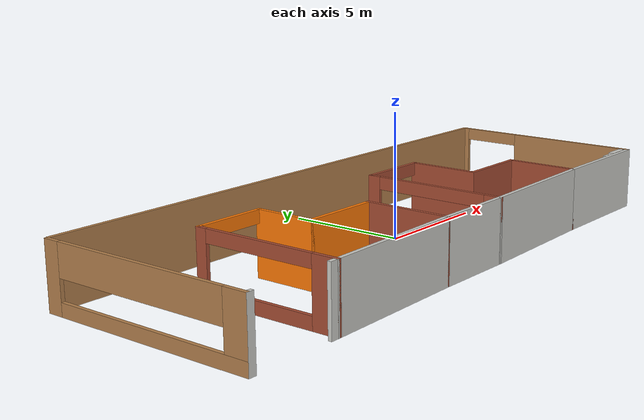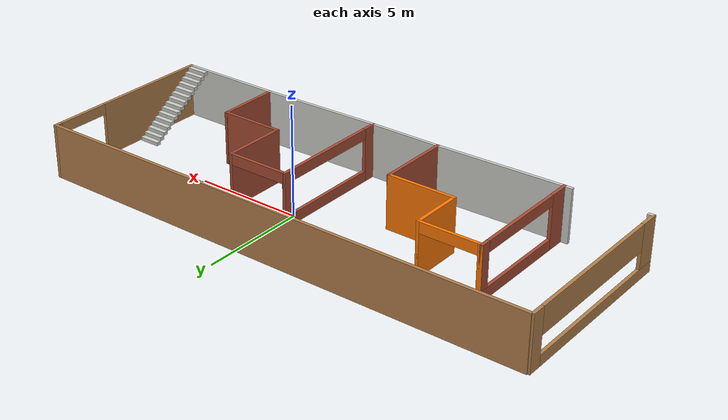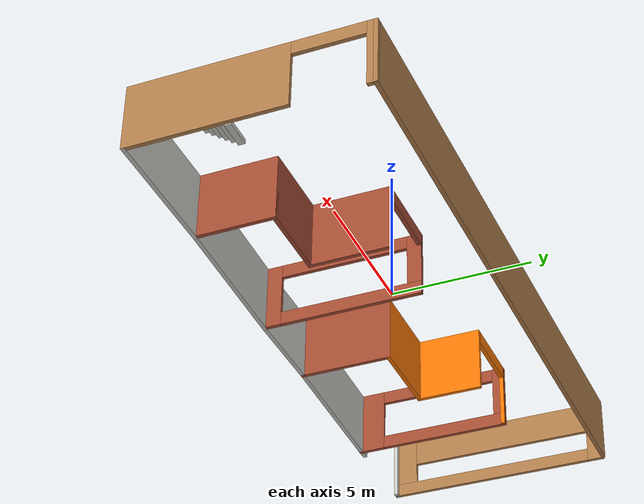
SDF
<?xml version='1.0'?>
<sdf version='1.6'>
  <model name='classroom'>
    <pose frame=''>-1.63813 -0.758557 0 0 -0 0</pose>
    <link name='Stairs_0'>
      <visual name='Stairs_0_Visual_0'>
        <pose frame=''>11.23 -0.540733 0.083333 0 -0 0</pose>
        <geometry>
          <box>
            <size>1 0.233333 0.166667</size>
          </box>
        </geometry>
        <material>
          <script>
            <uri>file://media/materials/scripts/gazebo.material</uri>
            <name>Gazebo/CeilingTiled</name>
          </script>
          <ambient>1 0.0941176 0.364706 1</ambient>
        </material>
        <meta>
          <layer>0</layer>
        </meta>
      </visual>
      <collision name='Stairs_0_Collision_0'>
        <geometry>
          <box>
            <size>1 0.233333 0.166667</size>
          </box>
        </geometry>
        <pose frame=''>11.23 -0.540733 0.083333 0 -0 0</pose>
      </collision>
      <visual name='Stairs_0_Visual_1'>
        <pose frame=''>11.23 -0.774067 0.25 0 -0 0</pose>
        <geometry>
          <box>
            <size>1 0.233333 0.166667</size>
          </box>
        </geometry>
        <material>
          <script>
            <uri>file://media/materials/scripts/gazebo.material</uri>
            <name>Gazebo/CeilingTiled</name>
          </script>
          <ambient>1 0.0941176 0.364706 1</ambient>
        </material>
        <meta>
          <layer>0</layer>
        </meta>
      </visual>
      <collision name='Stairs_0_Collision_1'>
        <geometry>
          <box>
            <size>1 0.233333 0.166667</size>
          </box>
        </geometry>
        <pose frame=''>11.23 -0.774067 0.25 0 -0 0</pose>
      </collision>
      <visual name='Stairs_0_Visual_2'>
        <pose frame=''>11.23 -1.0074 0.416667 0 -0 0</pose>
        <geometry>
          <box>
            <size>1 0.233333 0.166667</size>
          </box>
        </geometry>
        <material>
          <script>
            <uri>file://media/materials/scripts/gazebo.material</uri>
            <name>Gazebo/CeilingTiled</name>
          </script>
          <ambient>1 0.0941176 0.364706 1</ambient>
        </material>
        <meta>
          <layer>0</layer>
        </meta>
      </visual>
      <collision name='Stairs_0_Collision_2'>
        <geometry>
          <box>
            <size>1 0.233333 0.166667</size>
          </box>
        </geometry>
        <pose frame=''>11.23 -1.0074 0.416667 0 -0 0</pose>
      </collision>
      <visual name='Stairs_0_Visual_3'>
        <pose frame=''>11.23 -1.24073 0.583333 0 -0 0</pose>
        <geometry>
          <box>
            <size>1 0.233333 0.166667</size>
          </box>
        </geometry>
        <material>
          <script>
            <uri>file://media/materials/scripts/gazebo.material</uri>
            <name>Gazebo/CeilingTiled</name>
          </script>
          <ambient>1 0.0941176 0.364706 1</ambient>
        </material>
        <meta>
          <layer>0</layer>
        </meta>
      </visual>
      <collision name='Stairs_0_Collision_3'>
        <geometry>
          <box>
            <size>1 0.233333 0.166667</size>
          </box>
        </geometry>
        <pose frame=''>11.23 -1.24073 0.583333 0 -0 0</pose>
      </collision>
      <visual name='Stairs_0_Visual_4'>
        <pose frame=''>11.23 -1.47407 0.75 0 -0 0</pose>
        <geometry>
          <box>
            <size>1 0.233333 0.166667</size>
          </box>
        </geometry>
        <material>
          <script>
            <uri>file://media/materials/scripts/gazebo.material</uri>
            <name>Gazebo/CeilingTiled</name>
          </script>
          <ambient>1 0.0941176 0.364706 1</ambient>
        </material>
        <meta>
          <layer>0</layer>
        </meta>
      </visual>
      <collision name='Stairs_0_Collision_4'>
        <geometry>
          <box>
            <size>1 0.233333 0.166667</size>
          </box>
        </geometry>
        <pose frame=''>11.23 -1.47407 0.75 0 -0 0</pose>
      </collision>
      <visual name='Stairs_0_Visual_5'>
        <pose frame=''>11.23 -1.7074 0.916667 0 -0 0</pose>
        <geometry>
          <box>
            <size>1 0.233333 0.166667</size>
          </box>
        </geometry>
        <material>
          <script>
            <uri>file://media/materials/scripts/gazebo.material</uri>
            <name>Gazebo/CeilingTiled</name>
          </script>
          <ambient>1 0.0941176 0.364706 1</ambient>
        </material>
        <meta>
          <layer>0</layer>
        </meta>
      </visual>
      <collision name='Stairs_0_Collision_5'>
        <geometry>
          <box>
            <size>1 0.233333 0.166667</size>
          </box>
        </geometry>
        <pose frame=''>11.23 -1.7074 0.916667 0 -0 0</pose>
      </collision>
      <visual name='Stairs_0_Visual_6'>
        <pose frame=''>11.23 -1.94073 1.08333 0 -0 0</pose>
        <geometry>
          <box>
            <size>1 0.233333 0.166667</size>
          </box>
        </geometry>
        <material>
          <script>
            <uri>file://media/materials/scripts/gazebo.material</uri>
            <name>Gazebo/CeilingTiled</name>
          </script>
          <ambient>1 0.0941176 0.364706 1</ambient>
        </material>
        <meta>
          <layer>0</layer>
        </meta>
      </visual>
      <collision name='Stairs_0_Collision_6'>
        <geometry>
          <box>
            <size>1 0.233333 0.166667</size>
          </box>
        </geometry>
        <pose frame=''>11.23 -1.94073 1.08333 0 -0 0</pose>
      </collision>
      <visual name='Stairs_0_Visual_7'>
        <pose frame=''>11.23 -2.17407 1.25 0 -0 0</pose>
        <geometry>
          <box>
            <size>1 0.233333 0.166667</size>
          </box>
        </geometry>
        <material>
          <script>
            <uri>file://media/materials/scripts/gazebo.material</uri>
            <name>Gazebo/CeilingTiled</name>
          </script>
          <ambient>1 0.0941176 0.364706 1</ambient>
        </material>
        <meta>
          <layer>0</layer>
        </meta>
      </visual>
      <collision name='Stairs_0_Collision_7'>
        <geometry>
          <box>
            <size>1 0.233333 0.166667</size>
          </box>
        </geometry>
        <pose frame=''>11.23 -2.17407 1.25 0 -0 0</pose>
      </collision>
      <visual name='Stairs_0_Visual_8'>
        <pose frame=''>11.23 -2.4074 1.41667 0 -0 0</pose>
        <geometry>
          <box>
            <size>1 0.233333 0.166667</size>
          </box>
        </geometry>
        <material>
          <script>
            <uri>file://media/materials/scripts/gazebo.material</uri>
            <name>Gazebo/CeilingTiled</name>
          </script>
          <ambient>1 0.0941176 0.364706 1</ambient>
        </material>
        <meta>
          <layer>0</layer>
        </meta>
      </visual>
      <collision name='Stairs_0_Collision_8'>
        <geometry>
          <box>
            <size>1 0.233333 0.166667</size>
          </box>
        </geometry>
        <pose frame=''>11.23 -2.4074 1.41667 0 -0 0</pose>
      </collision>
      <visual name='Stairs_0_Visual_9'>
        <pose frame=''>11.23 -2.64073 1.58333 0 -0 0</pose>
        <geometry>
          <box>
            <size>1 0.233333 0.166667</size>
          </box>
        </geometry>
        <material>
          <script>
            <uri>file://media/materials/scripts/gazebo.material</uri>
            <name>Gazebo/CeilingTiled</name>
          </script>
          <ambient>1 0.0941176 0.364706 1</ambient>
        </material>
        <meta>
          <layer>0</layer>
        </meta>
      </visual>
      <collision name='Stairs_0_Collision_9'>
        <geometry>
          <box>
            <size>1 0.233333 0.166667</size>
          </box>
        </geometry>
        <pose frame=''>11.23 -2.64073 1.58333 0 -0 0</pose>
      </collision>
      <visual name='Stairs_0_Visual_10'>
        <pose frame=''>11.23 -2.87407 1.75 0 -0 0</pose>
        <geometry>
          <box>
            <size>1 0.233333 0.166667</size>
          </box>
        </geometry>
        <material>
          <script>
            <uri>file://media/materials/scripts/gazebo.material</uri>
            <name>Gazebo/CeilingTiled</name>
          </script>
          <ambient>1 0.0941176 0.364706 1</ambient>
        </material>
        <meta>
          <layer>0</layer>
        </meta>
      </visual>
      <collision name='Stairs_0_Collision_10'>
        <geometry>
          <box>
            <size>1 0.233333 0.166667</size>
          </box>
        </geometry>
        <pose frame=''>11.23 -2.87407 1.75 0 -0 0</pose>
      </collision>
      <visual name='Stairs_0_Visual_11'>
        <pose frame=''>11.23 -3.1074 1.91667 0 -0 0</pose>
        <geometry>
          <box>
            <size>1 0.233333 0.166667</size>
          </box>
        </geometry>
        <material>
          <script>
            <uri>file://media/materials/scripts/gazebo.material</uri>
            <name>Gazebo/CeilingTiled</name>
          </script>
          <ambient>1 0.0941176 0.364706 1</ambient>
        </material>
        <meta>
          <layer>0</layer>
        </meta>
      </visual>
      <collision name='Stairs_0_Collision_11'>
        <geometry>
          <box>
            <size>1 0.233333 0.166667</size>
          </box>
        </geometry>
        <pose frame=''>11.23 -3.1074 1.91667 0 -0 0</pose>
      </collision>
      <visual name='Stairs_0_Visual_12'>
        <pose frame=''>11.23 -3.34073 2.08333 0 -0 0</pose>
        <geometry>
          <box>
            <size>1 0.233333 0.166667</size>
          </box>
        </geometry>
        <material>
          <script>
            <uri>file://media/materials/scripts/gazebo.material</uri>
            <name>Gazebo/CeilingTiled</name>
          </script>
          <ambient>1 0.0941176 0.364706 1</ambient>
        </material>
        <meta>
          <layer>0</layer>
        </meta>
      </visual>
      <collision name='Stairs_0_Collision_12'>
        <geometry>
          <box>
            <size>1 0.233333 0.166667</size>
          </box>
        </geometry>
        <pose frame=''>11.23 -3.34073 2.08333 0 -0 0</pose>
      </collision>
      <visual name='Stairs_0_Visual_13'>
        <pose frame=''>11.23 -3.57407 2.25 0 -0 0</pose>
        <geometry>
          <box>
            <size>1 0.233333 0.166667</size>
          </box>
        </geometry>
        <material>
          <script>
            <uri>file://media/materials/scripts/gazebo.material</uri>
            <name>Gazebo/CeilingTiled</name>
          </script>
          <ambient>1 0.0941176 0.364706 1</ambient>
        </material>
        <meta>
          <layer>0</layer>
        </meta>
      </visual>
      <collision name='Stairs_0_Collision_13'>
        <geometry>
          <box>
            <size>1 0.233333 0.166667</size>
          </box>
        </geometry>
        <pose frame=''>11.23 -3.57407 2.25 0 -0 0</pose>
      </collision>
      <visual name='Stairs_0_Visual_14'>
        <pose frame=''>11.23 -3.8074 2.41667 0 -0 0</pose>
        <geometry>
          <box>
            <size>1 0.233333 0.166667</size>
          </box>
        </geometry>
        <material>
          <script>
            <uri>file://media/materials/scripts/gazebo.material</uri>
            <name>Gazebo/CeilingTiled</name>
          </script>
          <ambient>1 0.0941176 0.364706 1</ambient>
        </material>
        <meta>
          <layer>0</layer>
        </meta>
      </visual>
      <collision name='Stairs_0_Collision_14'>
        <geometry>
          <box>
            <size>1 0.233333 0.166667</size>
          </box>
        </geometry>
        <pose frame=''>11.23 -3.8074 2.41667 0 -0 0</pose>
      </collision>
    </link>
    <link name='Wall_1'>
      <pose frame=''>-11.85 -0.024067 0 0 0 -1.5708</pose>
      <visual name='Wall_1_Visual_0'>
        <pose frame=''>-4.055 0 1.25 0 -0 0</pose>
        <geometry>
          <box>
            <size>0.64 0.15 2.5</size>
          </box>
        </geometry>
        <material>
          <script>
            <uri>file://media/materials/scripts/gazebo.material</uri>
            <name>Gazebo/Wood</name>
          </script>
          <ambient>1 1 1 1</ambient>
        </material>
        <meta>
          <layer>0</layer>
        </meta>
      </visual>
      <collision name='Wall_1_Collision_0'>
        <geometry>
          <box>
            <size>0.64 0.15 2.5</size>
          </box>
        </geometry>
        <pose frame=''>-4.055 0 1.25 0 -0 0</pose>
      </collision>
      <visual name='Wall_1_Visual_1'>
        <pose frame=''>0.32 0 0.25 0 -0 0</pose>
        <geometry>
          <box>
            <size>8.11 0.15 0.5</size>
          </box>
        </geometry>
        <material>
          <script>
            <uri>file://media/materials/scripts/gazebo.material</uri>
            <name>Gazebo/Wood</name>
          </script>
          <ambient>1 1 1 1</ambient>
        </material>
        <meta>
          <layer>0</layer>
        </meta>
      </visual>
      <collision name='Wall_1_Collision_1'>
        <geometry>
          <box>
            <size>8.11 0.15 0.5</size>
          </box>
        </geometry>
        <pose frame=''>0.32 0 0.25 0 -0 0</pose>
      </collision>
      <visual name='Wall_1_Visual_2'>
        <pose frame=''>3.91 0 1.5 0 -0 0</pose>
        <geometry>
          <box>
            <size>0.93 0.15 2</size>
          </box>
        </geometry>
        <material>
          <script>
            <uri>file://media/materials/scripts/gazebo.material</uri>
            <name>Gazebo/Wood</name>
          </script>
          <ambient>1 1 1 1</ambient>
        </material>
        <meta>
          <layer>0</layer>
        </meta>
      </visual>
      <collision name='Wall_1_Collision_2'>
        <geometry>
          <box>
            <size>0.93 0.15 2</size>
          </box>
        </geometry>
        <pose frame=''>3.91 0 1.5 0 -0 0</pose>
      </collision>
      <visual name='Wall_1_Visual_3'>
        <pose frame=''>-0.145 0 1.9 0 -0 0</pose>
        <geometry>
          <box>
            <size>7.18 0.15 1.2</size>
          </box>
        </geometry>
        <material>
          <script>
            <uri>file://media/materials/scripts/gazebo.material</uri>
            <name>Gazebo/Wood</name>
          </script>
          <ambient>1 1 1 1</ambient>
        </material>
        <meta>
          <layer>0</layer>
        </meta>
      </visual>
      <collision name='Wall_1_Collision_3'>
        <geometry>
          <box>
            <size>7.18 0.15 1.2</size>
          </box>
        </geometry>
        <pose frame=''>-0.145 0 1.9 0 -0 0</pose>
      </collision>
    </link>
    <link name='Wall_10'>
      <pose frame=''>2.725 1.67593 0 0 -0 0</pose>
      <visual name='Wall_10_Visual_0'>
        <pose frame=''>-1.4375 0 1.25 0 -0 0</pose>
        <geometry>
          <box>
            <size>0.125 0.15 2.5</size>
          </box>
        </geometry>
        <material>
          <script>
            <uri>file://media/materials/scripts/gazebo.material</uri>
            <name>Gazebo/Bricks</name>
          </script>
          <ambient>0.435294 0.796078 0.67451 1</ambient>
        </material>
        <meta>
          <layer>0</layer>
        </meta>
      </visual>
      <collision name='Wall_10_Collision_0'>
        <geometry>
          <box>
            <size>0.125 0.15 2.5</size>
          </box>
        </geometry>
        <pose frame=''>-1.4375 0 1.25 0 -0 0</pose>
      </collision>
      <visual name='Wall_10_Visual_1'>
        <pose frame=''>1.4725 0 1.25 0 -0 0</pose>
        <geometry>
          <box>
            <size>0.055 0.15 2.5</size>
          </box>
        </geometry>
        <material>
          <script>
            <uri>file://media/materials/scripts/gazebo.material</uri>
            <name>Gazebo/Bricks</name>
          </script>
          <ambient>0.435294 0.796078 0.67451 1</ambient>
        </material>
        <meta>
          <layer>0</layer>
        </meta>
      </visual>
      <collision name='Wall_10_Collision_1'>
        <geometry>
          <box>
            <size>0.055 0.15 2.5</size>
          </box>
        </geometry>
        <pose frame=''>1.4725 0 1.25 0 -0 0</pose>
      </collision>
      <visual name='Wall_10_Visual_2'>
        <pose frame=''>0.035 0 2.25 0 -0 0</pose>
        <geometry>
          <box>
            <size>2.82 0.15 0.5</size>
          </box>
        </geometry>
        <material>
          <script>
            <uri>file://media/materials/scripts/gazebo.material</uri>
            <name>Gazebo/Bricks</name>
          </script>
          <ambient>0.435294 0.796078 0.67451 1</ambient>
        </material>
        <meta>
          <layer>0</layer>
        </meta>
      </visual>
      <collision name='Wall_10_Collision_2'>
        <geometry>
          <box>
            <size>2.82 0.15 0.5</size>
          </box>
        </geometry>
        <pose frame=''>0.035 0 2.25 0 -0 0</pose>
      </collision>
    </link>
    <link name='Wall_11'>
      <collision name='Wall_11_Collision'>
        <geometry>
          <box>
            <size>3 0.15 2.5</size>
          </box>
        </geometry>
        <pose frame=''>0 0 1.25 0 -0 0</pose>
      </collision>
      <visual name='Wall_11_Visual'>
        <pose frame=''>0 0 1.25 0 -0 0</pose>
        <geometry>
          <box>
            <size>3 0.15 2.5</size>
          </box>
        </geometry>
        <material>
          <script>
            <uri>file://media/materials/scripts/gazebo.material</uri>
            <name>Gazebo/Bricks</name>
          </script>
          <ambient>0.435294 0.796078 0.67451 1</ambient>
        </material>
        <meta>
          <layer>0</layer>
        </meta>
      </visual>
      <pose frame=''>4.15 0.250933 0 0 0 -1.5708</pose>
    </link>
    <link name='Wall_12'>
      <collision name='Wall_12_Collision'>
        <geometry>
          <box>
            <size>3 0.15 2.5</size>
          </box>
        </geometry>
        <pose frame=''>0 0 1.25 0 -0 0</pose>
      </collision>
      <visual name='Wall_12_Visual'>
        <pose frame=''>0 0 1.25 0 -0 0</pose>
        <geometry>
          <box>
            <size>3 0.15 2.5</size>
          </box>
        </geometry>
        <material>
          <script>
            <uri>file://media/materials/scripts/gazebo.material</uri>
            <name>Gazebo/Bricks</name>
          </script>
          <ambient>1 1 1 1</ambient>
        </material>
        <meta>
          <layer>0</layer>
        </meta>
      </visual>
      <pose frame=''>5.575 -1.17407 0 0 -0 0</pose>
    </link>
    <link name='Wall_13'>
      <collision name='Wall_13_Collision'>
        <geometry>
          <box>
            <size>3 0.15 2.5</size>
          </box>
        </geometry>
        <pose frame=''>0 0 1.25 0 -0 0</pose>
      </collision>
      <visual name='Wall_13_Visual'>
        <pose frame=''>0 0 1.25 0 -0 0</pose>
        <geometry>
          <box>
            <size>3 0.15 2.5</size>
          </box>
        </geometry>
        <material>
          <script>
            <uri>file://media/materials/scripts/gazebo.material</uri>
            <name>Gazebo/Bricks</name>
          </script>
          <ambient>1 1 1 1</ambient>
        </material>
        <meta>
          <layer>0</layer>
        </meta>
      </visual>
      <pose frame=''>7 -2.59907 0 0 0 -1.5708</pose>
    </link>
    <link name='Wall_14'>
      <collision name='Wall_14_Collision'>
        <geometry>
          <box>
            <size>5 0.15 2.5</size>
          </box>
        </geometry>
        <pose frame=''>0 0 1.25 0 -0 0</pose>
      </collision>
      <visual name='Wall_14_Visual'>
        <pose frame=''>0 0 1.25 0 -0 0</pose>
        <geometry>
          <box>
            <size>5 0.15 2.5</size>
          </box>
        </geometry>
        <material>
          <script>
            <uri>file://media/materials/scripts/gazebo.material</uri>
            <name>Gazebo/CeilingTiled</name>
          </script>
          <ambient>1 1 1 1</ambient>
        </material>
        <meta>
          <layer>0</layer>
        </meta>
      </visual>
      <pose frame=''>9.425 -4.02407 0 0 -0 0</pose>
    </link>
    <link name='Wall_15'>
      <pose frame=''>11.85 0.150933 0 0 -0 1.5708</pose>
      <visual name='Wall_15_Visual_0'>
        <pose frame=''>-1.425 0 1.25 0 -0 0</pose>
        <geometry>
          <box>
            <size>5.65 0.15 2.5</size>
          </box>
        </geometry>
        <material>
          <script>
            <uri>file://media/materials/scripts/gazebo.material</uri>
            <name>Gazebo/Wood</name>
          </script>
          <ambient>1 1 1 1</ambient>
        </material>
        <meta>
          <layer>0</layer>
        </meta>
      </visual>
      <collision name='Wall_15_Collision_0'>
        <geometry>
          <box>
            <size>5.65 0.15 2.5</size>
          </box>
        </geometry>
        <pose frame=''>-1.425 0 1.25 0 -0 0</pose>
      </collision>
      <visual name='Wall_15_Visual_1'>
        <pose frame=''>4.07 0 1.25 0 -0 0</pose>
        <geometry>
          <box>
            <size>0.36 0.15 2.5</size>
          </box>
        </geometry>
        <material>
          <script>
            <uri>file://media/materials/scripts/gazebo.material</uri>
            <name>Gazebo/Wood</name>
          </script>
          <ambient>1 1 1 1</ambient>
        </material>
        <meta>
          <layer>0</layer>
        </meta>
      </visual>
      <collision name='Wall_15_Collision_1'>
        <geometry>
          <box>
            <size>0.36 0.15 2.5</size>
          </box>
        </geometry>
        <pose frame=''>4.07 0 1.25 0 -0 0</pose>
      </collision>
      <visual name='Wall_15_Visual_2'>
        <pose frame=''>2.645 0 2.25 0 -0 0</pose>
        <geometry>
          <box>
            <size>2.49 0.15 0.5</size>
          </box>
        </geometry>
        <material>
          <script>
            <uri>file://media/materials/scripts/gazebo.material</uri>
            <name>Gazebo/Wood</name>
          </script>
          <ambient>1 1 1 1</ambient>
        </material>
        <meta>
          <layer>0</layer>
        </meta>
      </visual>
      <collision name='Wall_15_Collision_2'>
        <geometry>
          <box>
            <size>2.49 0.15 0.5</size>
          </box>
        </geometry>
        <pose frame=''>2.645 0 2.25 0 -0 0</pose>
      </collision>
    </link>
    <link name='Wall_16'>
      <collision name='Wall_16_Collision'>
        <geometry>
          <box>
            <size>23.75 0.15 2.5</size>
          </box>
        </geometry>
        <pose frame=''>0 0 1.25 0 -0 0</pose>
      </collision>
      <visual name='Wall_16_Visual'>
        <pose frame=''>0 0 1.25 0 -0 0</pose>
        <geometry>
          <box>
            <size>23.75 0.15 2.5</size>
          </box>
        </geometry>
        <material>
          <script>
            <uri>file://media/materials/scripts/gazebo.material</uri>
            <name>Gazebo/Wood</name>
          </script>
          <ambient>1 1 1 1</ambient>
        </material>
        <meta>
          <layer>0</layer>
        </meta>
      </visual>
      <pose frame=''>0.05 4.32593 0 0 -0 3.14159</pose>
    </link>
    <link name='Wall_18'>
      <collision name='Wall_18_Collision'>
        <geometry>
          <box>
            <size>6.10189 0.15 2.5</size>
          </box>
        </geometry>
        <pose frame=''>0 0 1.25 0 -0 0</pose>
      </collision>
      <visual name='Wall_18_Visual'>
        <pose frame=''>0 0 1.25 0 -0 0</pose>
        <geometry>
          <box>
            <size>6.10189 0.15 2.5</size>
          </box>
        </geometry>
        <material>
          <script>
            <uri>file://media/materials/scripts/gazebo.material</uri>
            <name>Gazebo/CeilingTiled</name>
          </script>
          <ambient>1 1 1 1</ambient>
        </material>
        <meta>
          <layer>0</layer>
        </meta>
      </visual>
      <pose frame=''>-5.025 -4.24907 0 0 -0 0.025205</pose>
    </link>
    <link name='Wall_2'>
      <pose frame=''>-9.925 -4.32407 0 0 -0 0</pose>
      <visual name='Wall_2_Visual_0'>
        <pose frame=''>-1.845 0 1.25 0 -0 0</pose>
        <geometry>
          <box>
            <size>0.31 0.15 2.5</size>
          </box>
        </geometry>
        <material>
          <script>
            <uri>file://media/materials/scripts/gazebo.material</uri>
            <name>Gazebo/CeilingTiled</name>
          </script>
          <ambient>1 1 1 1</ambient>
        </material>
        <meta>
          <layer>0</layer>
        </meta>
      </visual>
      <collision name='Wall_2_Collision_0'>
        <geometry>
          <box>
            <size>0.31 0.15 2.5</size>
          </box>
        </geometry>
        <pose frame=''>-1.845 0 1.25 0 -0 0</pose>
      </collision>
      <visual name='Wall_2_Visual_1'>
        <pose frame=''>1.77 0 1.25 0 -0 0</pose>
        <geometry>
          <box>
            <size>0.46 0.15 2.5</size>
          </box>
        </geometry>
        <material>
          <script>
            <uri>file://media/materials/scripts/gazebo.material</uri>
            <name>Gazebo/CeilingTiled</name>
          </script>
          <ambient>1 1 1 1</ambient>
        </material>
        <meta>
          <layer>0</layer>
        </meta>
      </visual>
      <collision name='Wall_2_Collision_1'>
        <geometry>
          <box>
            <size>0.46 0.15 2.5</size>
          </box>
        </geometry>
        <pose frame=''>1.77 0 1.25 0 -0 0</pose>
      </collision>
    </link>
    <link name='Wall_20'>
      <collision name='Wall_20_Collision'>
        <geometry>
          <box>
            <size>5.85197 0.15 2.5</size>
          </box>
        </geometry>
        <pose frame=''>0 0 1.25 0 -0 0</pose>
      </collision>
      <visual name='Wall_20_Visual'>
        <pose frame=''>0 0 1.25 0 -0 0</pose>
        <geometry>
          <box>
            <size>5.85197 0.15 2.5</size>
          </box>
        </geometry>
        <material>
          <script>
            <uri>file://media/materials/scripts/gazebo.material</uri>
            <name>Gazebo/CeilingTiled</name>
          </script>
          <ambient>1 1 1 1</ambient>
        </material>
        <meta>
          <layer>0</layer>
        </meta>
      </visual>
      <pose frame=''>4.15 -4.09907 0 0 -0 0.02631</pose>
    </link>
    <link name='Wall_22'>
      <pose frame=''>-6.575 1.52593 0 0 -0 0</pose>
      <visual name='Wall_22_Visual_0'>
        <pose frame=''>-1.385 0 1.25 0 -0 0</pose>
        <geometry>
          <box>
            <size>0.23 0.15 2.5</size>
          </box>
        </geometry>
        <material>
          <script>
            <uri>file://media/materials/scripts/gazebo.material</uri>
            <name>Gazebo/Grey</name>
          </script>
          <ambient>0.996078 0.47451 0.0196078 1</ambient>
        </material>
        <meta>
          <layer>0</layer>
        </meta>
      </visual>
      <collision name='Wall_22_Collision_0'>
        <geometry>
          <box>
            <size>0.23 0.15 2.5</size>
          </box>
        </geometry>
        <pose frame=''>-1.385 0 1.25 0 -0 0</pose>
      </collision>
      <visual name='Wall_22_Visual_1'>
        <pose frame=''>1.45 0 1.25 0 -0 0</pose>
        <geometry>
          <box>
            <size>0.1 0.15 2.5</size>
          </box>
        </geometry>
        <material>
          <script>
            <uri>file://media/materials/scripts/gazebo.material</uri>
            <name>Gazebo/Grey</name>
          </script>
          <ambient>0.996078 0.47451 0.0196078 1</ambient>
        </material>
        <meta>
          <layer>0</layer>
        </meta>
      </visual>
      <collision name='Wall_22_Collision_1'>
        <geometry>
          <box>
            <size>0.1 0.15 2.5</size>
          </box>
        </geometry>
        <pose frame=''>1.45 0 1.25 0 -0 0</pose>
      </collision>
      <visual name='Wall_22_Visual_2'>
        <pose frame=''>0.065 0 2.25 0 -0 0</pose>
        <geometry>
          <box>
            <size>2.67 0.15 0.5</size>
          </box>
        </geometry>
        <material>
          <script>
            <uri>file://media/materials/scripts/gazebo.material</uri>
            <name>Gazebo/Grey</name>
          </script>
          <ambient>0.996078 0.47451 0.0196078 1</ambient>
        </material>
        <meta>
          <layer>0</layer>
        </meta>
      </visual>
      <collision name='Wall_22_Collision_2'>
        <geometry>
          <box>
            <size>2.67 0.15 0.5</size>
          </box>
        </geometry>
        <pose frame=''>0.065 0 2.25 0 -0 0</pose>
      </collision>
    </link>
    <link name='Wall_23'>
      <collision name='Wall_23_Collision'>
        <geometry>
          <box>
            <size>2.5 0.15 2.5</size>
          </box>
        </geometry>
        <pose frame=''>0 0 1.25 0 -0 0</pose>
      </collision>
      <visual name='Wall_23_Visual'>
        <pose frame=''>0 0 1.25 0 -0 0</pose>
        <geometry>
          <box>
            <size>2.5 0.15 2.5</size>
          </box>
        </geometry>
        <material>
          <script>
            <uri>file://media/materials/scripts/gazebo.material</uri>
            <name>Gazebo/Grey</name>
          </script>
          <ambient>0.996078 0.47451 0.0196078 1</ambient>
        </material>
        <meta>
          <layer>0</layer>
        </meta>
      </visual>
      <pose frame=''>-5.15 0.350933 0 0 0 -1.5708</pose>
    </link>
    <link name='Wall_24'>
      <collision name='Wall_24_Collision'>
        <geometry>
          <box>
            <size>3.25 0.15 2.5</size>
          </box>
        </geometry>
        <pose frame=''>0 0 1.25 0 -0 0</pose>
      </collision>
      <visual name='Wall_24_Visual'>
        <pose frame=''>0 0 1.25 0 -0 0</pose>
        <geometry>
          <box>
            <size>3.25 0.15 2.5</size>
          </box>
        </geometry>
        <material>
          <script>
            <uri>file://media/materials/scripts/gazebo.material</uri>
            <name>Gazebo/Grey</name>
          </script>
          <ambient>0.996078 0.47451 0.0196078 1</ambient>
        </material>
        <meta>
          <layer>0</layer>
        </meta>
      </visual>
      <pose frame=''>-3.6 -0.824067 0 0 -0 0</pose>
    </link>
    <link name='Wall_3'>
      <pose frame=''>-8 -1.39907 0 0 -0 1.5708</pose>
      <visual name='Wall_3_Visual_0'>
        <pose frame=''>-2.485 0 1.25 0 -0 0</pose>
        <geometry>
          <box>
            <size>1.03 0.15 2.5</size>
          </box>
        </geometry>
        <material>
          <script>
            <uri>file://media/materials/scripts/gazebo.material</uri>
            <name>Gazebo/Bricks</name>
          </script>
          <ambient>1 1 1 1</ambient>
        </material>
        <meta>
          <layer>0</layer>
        </meta>
      </visual>
      <collision name='Wall_3_Collision_0'>
        <geometry>
          <box>
            <size>1.03 0.15 2.5</size>
          </box>
        </geometry>
        <pose frame=''>-2.485 0 1.25 0 -0 0</pose>
      </collision>
      <visual name='Wall_3_Visual_1'>
        <pose frame=''>0.515 0 0.25 0 -0 0</pose>
        <geometry>
          <box>
            <size>4.97 0.15 0.5</size>
          </box>
        </geometry>
        <material>
          <script>
            <uri>file://media/materials/scripts/gazebo.material</uri>
            <name>Gazebo/Bricks</name>
          </script>
          <ambient>1 1 1 1</ambient>
        </material>
        <meta>
          <layer>0</layer>
        </meta>
      </visual>
      <collision name='Wall_3_Collision_1'>
        <geometry>
          <box>
            <size>4.97 0.15 0.5</size>
          </box>
        </geometry>
        <pose frame=''>0.515 0 0.25 0 -0 0</pose>
      </collision>
      <visual name='Wall_3_Visual_2'>
        <pose frame=''>2.77 0 1.5 0 -0 0</pose>
        <geometry>
          <box>
            <size>0.46 0.15 2</size>
          </box>
        </geometry>
        <material>
          <script>
            <uri>file://media/materials/scripts/gazebo.material</uri>
            <name>Gazebo/Bricks</name>
          </script>
          <ambient>1 1 1 1</ambient>
        </material>
        <meta>
          <layer>0</layer>
        </meta>
      </visual>
      <collision name='Wall_3_Collision_2'>
        <geometry>
          <box>
            <size>0.46 0.15 2</size>
          </box>
        </geometry>
        <pose frame=''>2.77 0 1.5 0 -0 0</pose>
      </collision>
      <visual name='Wall_3_Visual_3'>
        <pose frame=''>0.285 0 2.25 0 -0 0</pose>
        <geometry>
          <box>
            <size>4.51 0.15 0.5</size>
          </box>
        </geometry>
        <material>
          <script>
            <uri>file://media/materials/scripts/gazebo.material</uri>
            <name>Gazebo/Bricks</name>
          </script>
          <ambient>1 1 1 1</ambient>
        </material>
        <meta>
          <layer>0</layer>
        </meta>
      </visual>
      <collision name='Wall_3_Collision_3'>
        <geometry>
          <box>
            <size>4.51 0.15 0.5</size>
          </box>
        </geometry>
        <pose frame=''>0.285 0 2.25 0 -0 0</pose>
      </collision>
    </link>
    <link name='Wall_7'>
      <collision name='Wall_7_Collision'>
        <geometry>
          <box>
            <size>3.5 0.15 2.5</size>
          </box>
        </geometry>
        <pose frame=''>0 0 1.25 0 -0 0</pose>
      </collision>
      <visual name='Wall_7_Visual'>
        <pose frame=''>0 0 1.25 0 -0 0</pose>
        <geometry>
          <box>
            <size>3.5 0.15 2.5</size>
          </box>
        </geometry>
        <material>
          <script>
            <uri>file://media/materials/scripts/gazebo.material</uri>
            <name>Gazebo/Bricks</name>
          </script>
          <ambient>1 1 1 1</ambient>
        </material>
        <meta>
          <layer>0</layer>
        </meta>
      </visual>
      <pose frame=''>-2.05 -2.49907 0 0 0 -1.5708</pose>
    </link>
    <link name='Wall_8'>
      <collision name='Wall_8_Collision'>
        <geometry>
          <box>
            <size>3.5 0.15 2.5</size>
          </box>
        </geometry>
        <pose frame=''>0 0 1.25 0 -0 0</pose>
      </collision>
      <visual name='Wall_8_Visual'>
        <pose frame=''>0 0 1.25 0 -0 0</pose>
        <geometry>
          <box>
            <size>3.5 0.15 2.5</size>
          </box>
        </geometry>
        <material>
          <script>
            <uri>file://media/materials/scripts/gazebo.material</uri>
            <name>Gazebo/CeilingTiled</name>
          </script>
          <ambient>1 1 1 1</ambient>
        </material>
        <meta>
          <layer>0</layer>
        </meta>
      </visual>
      <pose frame=''>-0.375 -4.17407 0 0 -0 0</pose>
    </link>
    <link name='Wall_9'>
      <pose frame=''>1.3 -1.24907 0 0 -0 1.5708</pose>
      <visual name='Wall_9_Visual_0'>
        <pose frame=''>-2.6425 0 1.25 0 -0 0</pose>
        <geometry>
          <box>
            <size>0.715 0.15 2.5</size>
          </box>
        </geometry>
        <material>
          <script>
            <uri>file://media/materials/scripts/gazebo.material</uri>
            <name>Gazebo/Bricks</name>
          </script>
          <ambient>1 1 1 1</ambient>
        </material>
        <meta>
          <layer>0</layer>
        </meta>
      </visual>
      <collision name='Wall_9_Collision_0'>
        <geometry>
          <box>
            <size>0.715 0.15 2.5</size>
          </box>
        </geometry>
        <pose frame=''>-2.6425 0 1.25 0 -0 0</pose>
      </collision>
      <visual name='Wall_9_Visual_1'>
        <pose frame=''>0.3575 0 0.25 0 -0 0</pose>
        <geometry>
          <box>
            <size>5.285 0.15 0.5</size>
          </box>
        </geometry>
        <material>
          <script>
            <uri>file://media/materials/scripts/gazebo.material</uri>
            <name>Gazebo/Bricks</name>
          </script>
          <ambient>1 1 1 1</ambient>
        </material>
        <meta>
          <layer>0</layer>
        </meta>
      </visual>
      <collision name='Wall_9_Collision_1'>
        <geometry>
          <box>
            <size>5.285 0.15 0.5</size>
          </box>
        </geometry>
        <pose frame=''>0.3575 0 0.25 0 -0 0</pose>
      </collision>
      <visual name='Wall_9_Visual_2'>
        <pose frame=''>2.7325 0 1.5 0 -0 0</pose>
        <geometry>
          <box>
            <size>0.535 0.15 2</size>
          </box>
        </geometry>
        <material>
          <script>
            <uri>file://media/materials/scripts/gazebo.material</uri>
            <name>Gazebo/Bricks</name>
          </script>
          <ambient>1 1 1 1</ambient>
        </material>
        <meta>
          <layer>0</layer>
        </meta>
      </visual>
      <collision name='Wall_9_Collision_2'>
        <geometry>
          <box>
            <size>0.535 0.15 2</size>
          </box>
        </geometry>
        <pose frame=''>2.7325 0 1.5 0 -0 0</pose>
      </collision>
      <visual name='Wall_9_Visual_3'>
        <pose frame=''>0.09 0 2.25 0 -0 0</pose>
        <geometry>
          <box>
            <size>4.75 0.15 0.5</size>
          </box>
        </geometry>
        <material>
          <script>
            <uri>file://media/materials/scripts/gazebo.material</uri>
            <name>Gazebo/Bricks</name>
          </script>
          <ambient>1 1 1 1</ambient>
        </material>
        <meta>
          <layer>0</layer>
        </meta>
      </visual>
      <collision name='Wall_9_Collision_3'>
        <geometry>
          <box>
            <size>4.75 0.15 0.5</size>
          </box>
        </geometry>
        <pose frame=''>0.09 0 2.25 0 -0 0</pose>
      </collision>
    </link>
    <static>1</static>
  </model>
</sdf>
